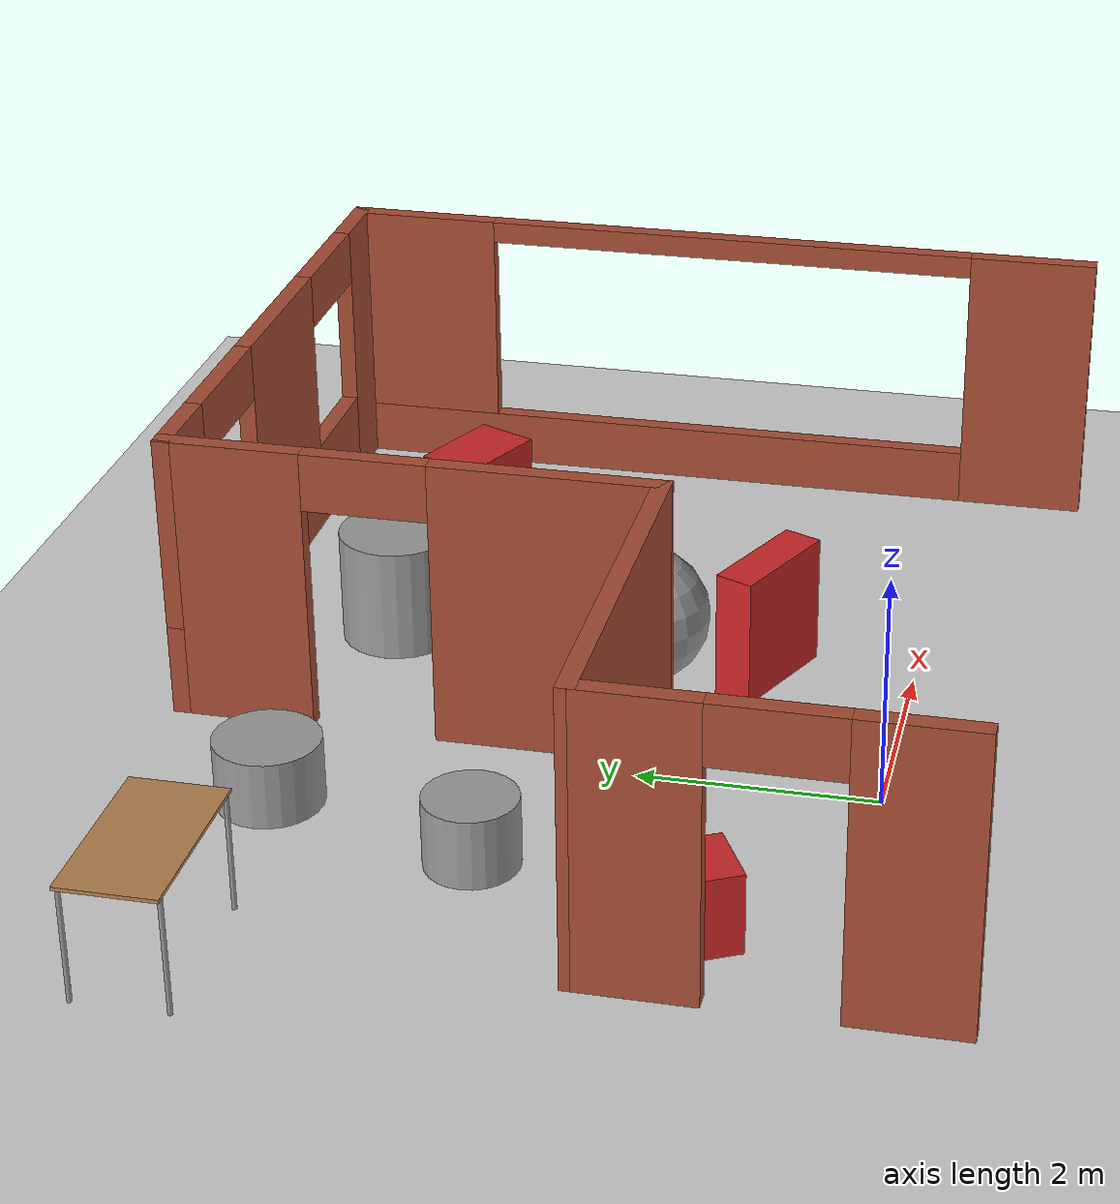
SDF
<sdf version="1.7">
 <world name="default">
  <model name="ground_plane">
   <static>1</static>
   <link name="link">
    <collision name="collision">
     <geometry><plane><normal>0 0 1</normal><size>100 100</size></plane></geometry>
     <surface>
      <contact><collide_bitmask>65535</collide_bitmask></contact>
      <friction><ode><mu>100</mu><mu2>50</mu2></ode></friction>
     </surface>
    </collision>
    <visual name="visual">
     <cast_shadows>0</cast_shadows>
     <geometry><plane><normal>0 0 1</normal><size>100 100</size></plane></geometry>
     <material>
      <script><uri>file://media/materials/scripts/gazebo.material</uri><name>Gazebo/Grey</name></script>
     </material>
    </visual>
   </link>
  </model>
  <model name="table">
   <static>1</static>
   <link name="link">
    <collision name="surface">
     <pose>0 0 1 0 -0 0</pose>
     <geometry><box><size>1.5 0.8 0.03</size></box></geometry>
     <surface><friction><ode><mu>0.6</mu><mu2>0.6</mu2></ode></friction></surface>
    </collision>
    <visual name="visual1">
     <pose>0 0 1 0 -0 0</pose>
     <geometry><box><size>1.5 0.8 0.03</size></box></geometry>
     <material>
      <script><uri>file://media/materials/scripts/gazebo.material</uri><name>Gazebo/Wood</name></script>
     </material>
    </visual>
    <collision name="front_left_leg">
     <pose>0.68 0.38 0.5 0 -0 0</pose>
     <geometry><cylinder><radius>0.02</radius><length>1</length></cylinder></geometry>
    </collision>
    <visual name="front_left_leg">
     <pose>0.68 0.38 0.5 0 -0 0</pose>
     <geometry><cylinder><radius>0.02</radius><length>1</length></cylinder></geometry>
     <material>
      <script><uri>file://media/materials/scripts/gazebo.material</uri><name>Gazebo/Grey</name></script>
     </material>
    </visual>
    <collision name="front_right_leg">
     <pose>0.68 -0.38 0.5 0 -0 0</pose>
     <geometry><cylinder><radius>0.02</radius><length>1</length></cylinder></geometry>
    </collision>
    <visual name="front_right_leg">
     <pose>0.68 -0.38 0.5 0 -0 0</pose>
     <geometry><cylinder><radius>0.02</radius><length>1</length></cylinder></geometry>
     <material>
      <script><uri>file://media/materials/scripts/gazebo.material</uri><name>Gazebo/Grey</name></script>
     </material>
    </visual>
    <collision name="back_right_leg">
     <pose>-0.68 -0.38 0.5 0 -0 0</pose>
     <geometry><cylinder><radius>0.02</radius><length>1</length></cylinder></geometry>
    </collision>
    <visual name="back_right_leg">
     <pose>-0.68 -0.38 0.5 0 -0 0</pose>
     <geometry><cylinder><radius>0.02</radius><length>1</length></cylinder></geometry>
     <material>
      <script><uri>file://media/materials/scripts/gazebo.material</uri><name>Gazebo/Grey</name></script>
     </material>
    </visual>
    <collision name="back_left_leg">
     <pose>-0.68 0.38 0.5 0 -0 0</pose>
     <geometry><cylinder><radius>0.02</radius><length>1</length></cylinder></geometry>
    </collision>
    <visual name="back_left_leg">
     <pose>-0.68 0.38 0.5 0 -0 0</pose>
     <geometry><cylinder><radius>0.02</radius><length>1</length></cylinder></geometry>
     <material>
      <script><uri>file://media/materials/scripts/gazebo.material</uri><name>Gazebo/Grey</name></script>
     </material>
    </visual>
   </link>
   <pose>-3.15936 4.91977 0 0 -0 0</pose>
  </model>
  <model name="unit_cylinder">
   <pose>-0.951249 4.77245 0.286507 0 0 -0.507211</pose>
   <link name="link">
    <inertial>
     <mass>1</mass>
     <inertia><ixx>0.145833</ixx><ixy>0</ixy><ixz>0</ixz><iyy>0.145833</iyy><iyz>0</iyz><izz>0.125</izz></inertia>
    </inertial>
    <collision name="collision">
     <geometry><cylinder><radius>0.443131</radius><length>0.573015</length></cylinder></geometry>
    </collision>
    <visual name="visual">
     <geometry><cylinder><radius>0.443131</radius><length>0.573015</length></cylinder></geometry>
     <material>
      <script><name>Gazebo/Grey</name><uri>file://media/materials/scripts/gazebo.material</uri></script>
     </material>
    </visual>
   </link>
  </model>
  <model name="unit_cylinder_0">
   <pose>-1.50045 2.96064 0.299235 0 0 -1.03302</pose>
   <link name="link">
    <inertial>
     <mass>1</mass>
     <inertia><ixx>0.145833</ixx><ixy>0</ixy><ixz>0</ixz><iyy>0.145833</iyy><iyz>0</iyz><izz>0.125</izz></inertia>
    </inertial>
    <collision name="collision">
     <geometry><cylinder><radius>0.386388</radius><length>0.59847</length></cylinder></geometry>
    </collision>
    <visual name="visual">
     <geometry><cylinder><radius>0.386388</radius><length>0.59847</length></cylinder></geometry>
     <material>
      <script><name>Gazebo/Grey</name><uri>file://media/materials/scripts/gazebo.material</uri></script>
     </material>
    </visual>
   </link>
  </model>
  <model name="unit_cylinder_1">
   <pose>1.96335 4.55514 0.5 0 -0 0</pose>
   <link name="link">
    <inertial>
     <mass>1</mass>
     <inertia><ixx>0.145833</ixx><ixy>0</ixy><ixz>0</ixz><iyy>0.145833</iyy><iyz>0</iyz><izz>0.125</izz></inertia>
    </inertial>
    <collision name="collision">
     <geometry><cylinder><radius>0.501667</radius><length>1</length></cylinder></geometry>
    </collision>
    <visual name="visual">
     <geometry><cylinder><radius>0.501667</radius><length>1</length></cylinder></geometry>
     <material>
      <script><name>Gazebo/Grey</name><uri>file://media/materials/scripts/gazebo.material</uri></script>
     </material>
    </visual>
   </link>
  </model>
  <model name="unit_sphere_0">
   <pose>1.6417 2.30704 0.591817 0 -0 0</pose>
   <link name="link">
    <inertial>
     <mass>1</mass>
     <inertia><ixx>0.1</ixx><ixy>0</ixy><ixz>0</ixz><iyy>0.1</iyy><iyz>0</iyz><izz>0.1</izz></inertia>
    </inertial>
    <collision name="collision"><geometry><sphere><radius>0.591817</radius></sphere></geometry></collision>
    <visual name="visual">
     <geometry><sphere><radius>0.591817</radius></sphere></geometry>
     <material>
      <script><name>Gazebo/Grey</name><uri>file://media/materials/scripts/gazebo.material</uri></script>
     </material>
    </visual>
   </link>
  </model>
  <model name="AssignmentBuilding_0">
   <link name="Wall_37">
    <pose>0.967555 4.32584 0 0 0 -1.5708</pose>
    <inertial>
     <mass>1</mass>
     <inertia><ixx>1</ixx><ixy>0</ixy><ixz>0</ixz><iyy>1</iyy><iyz>0</iyz><izz>1</izz></inertia>
    </inertial>
    <visual name="Wall_37_Visual_1">
     <pose>1.14152 0 1.25 0 -0 0</pose>
     <geometry><box><size>1.96696 0.15 2.5</size></box></geometry>
     <material>
      <script><uri>file://media/materials/scripts/gazebo.material</uri><name>Gazebo/Bricks</name></script>
      <ambient>1 1 1 1</ambient>
      <shader type="pixel"><normal_map>__default__</normal_map></shader>
      <diffuse>0.7 0.7 0.7 1</diffuse>
      <specular>0.01 0.01 0.01 1</specular>
      <emissive>0 0 0 1</emissive>
     </material>
     <meta><layer>0</layer></meta>
    </visual>
    <visual name="Wall_37_Visual_0">
     <pose>-1.50876 0 1.25 0 -0 0</pose>
     <geometry><box><size>1.23247 0.15 2.5</size></box></geometry>
     <material>
      <script><uri>file://media/materials/scripts/gazebo.material</uri><name>Gazebo/Bricks</name></script>
      <ambient>1 1 1 1</ambient>
      <shader type="pixel"><normal_map>__default__</normal_map></shader>
      <diffuse>0.7 0.7 0.7 1</diffuse>
      <specular>0.01 0.01 0.01 1</specular>
      <emissive>0 0 0 1</emissive>
     </material>
     <meta><layer>0</layer></meta>
    </visual>
    <visual name="Wall_37_Visual_2">
     <pose>-0.367245 0 2.25 0 -0 0</pose>
     <geometry><box><size>1.05057 0.15 0.5</size></box></geometry>
     <material>
      <script><uri>file://media/materials/scripts/gazebo.material</uri><name>Gazebo/Bricks</name></script>
      <ambient>1 1 1 1</ambient>
      <shader type="pixel"><normal_map>__default__</normal_map></shader>
      <diffuse>0.7 0.7 0.7 1</diffuse>
      <specular>0.01 0.01 0.01 1</specular>
      <emissive>0 0 0 1</emissive>
     </material>
     <meta><layer>0</layer></meta>
    </visual>
    <collision name="Wall_37_Collision_0">
     <pose>-1.50876 0 1.25 0 -0 0</pose>
     <geometry><box><size>1.23247 0.15 2.5</size></box></geometry>
     <surface>
      <friction>
       <ode><mu>1</mu><mu2>1</mu2><fdir1>0 0 0</fdir1><slip1>0</slip1><slip2>0</slip2></ode>
       <torsional>
        <coefficient>1</coefficient>
        <patch_radius>0</patch_radius>
        <surface_radius>0</surface_radius>
        <use_patch_radius>1</use_patch_radius>
        <ode><slip>0</slip></ode>
       </torsional>
      </friction>
      <bounce><restitution_coefficient>0</restitution_coefficient><threshold>1e+06</threshold></bounce>
      <contact>
       <collide_without_contact>0</collide_without_contact>
       <collide_without_contact_bitmask>1</collide_without_contact_bitmask>
       <collide_bitmask>1</collide_bitmask>
       <ode>
        <soft_cfm>0</soft_cfm>
        <soft_erp>0.2</soft_erp>
        <kp>1e+13</kp>
        <kd>1</kd>
        <max_vel>0.01</max_vel>
        <min_depth>0</min_depth>
       </ode>
       <bullet>
        <split_impulse>1</split_impulse>
        <split_impulse_penetration_threshold>-0.01</split_impulse_penetration_threshold>
        <soft_cfm>0</soft_cfm>
        <soft_erp>0.2</soft_erp>
        <kp>1e+13</kp>
        <kd>1</kd>
       </bullet>
      </contact>
     </surface>
    </collision>
    <collision name="Wall_37_Collision_1">
     <pose>1.14152 0 1.25 0 -0 0</pose>
     <geometry><box><size>1.96696 0.15 2.5</size></box></geometry>
     <surface>
      <friction>
       <ode><mu>1</mu><mu2>1</mu2><fdir1>0 0 0</fdir1><slip1>0</slip1><slip2>0</slip2></ode>
       <torsional>
        <coefficient>1</coefficient>
        <patch_radius>0</patch_radius>
        <surface_radius>0</surface_radius>
        <use_patch_radius>1</use_patch_radius>
        <ode><slip>0</slip></ode>
       </torsional>
      </friction>
      <bounce><restitution_coefficient>0</restitution_coefficient><threshold>1e+06</threshold></bounce>
      <contact>
       <collide_without_contact>0</collide_without_contact>
       <collide_without_contact_bitmask>1</collide_without_contact_bitmask>
       <collide_bitmask>1</collide_bitmask>
       <ode>
        <soft_cfm>0</soft_cfm>
        <soft_erp>0.2</soft_erp>
        <kp>1e+13</kp>
        <kd>1</kd>
        <max_vel>0.01</max_vel>
        <min_depth>0</min_depth>
       </ode>
       <bullet>
        <split_impulse>1</split_impulse>
        <split_impulse_penetration_threshold>-0.01</split_impulse_penetration_threshold>
        <soft_cfm>0</soft_cfm>
        <soft_erp>0.2</soft_erp>
        <kp>1e+13</kp>
        <kd>1</kd>
       </bullet>
      </contact>
     </surface>
    </collision>
    <collision name="Wall_37_Collision_2">
     <pose>-0.367245 0 2.25 0 -0 0</pose>
     <geometry><box><size>1.05057 0.15 0.5</size></box></geometry>
     <surface>
      <friction>
       <ode><mu>1</mu><mu2>1</mu2><fdir1>0 0 0</fdir1><slip1>0</slip1><slip2>0</slip2></ode>
       <torsional>
        <coefficient>1</coefficient>
        <patch_radius>0</patch_radius>
        <surface_radius>0</surface_radius>
        <use_patch_radius>1</use_patch_radius>
        <ode><slip>0</slip></ode>
       </torsional>
      </friction>
      <bounce><restitution_coefficient>0</restitution_coefficient><threshold>1e+06</threshold></bounce>
      <contact>
       <collide_without_contact>0</collide_without_contact>
       <collide_without_contact_bitmask>1</collide_without_contact_bitmask>
       <collide_bitmask>1</collide_bitmask>
       <ode>
        <soft_cfm>0</soft_cfm>
        <soft_erp>0.2</soft_erp>
        <kp>1e+13</kp>
        <kd>1</kd>
        <max_vel>0.01</max_vel>
        <min_depth>0</min_depth>
       </ode>
       <bullet>
        <split_impulse>1</split_impulse>
        <split_impulse_penetration_threshold>-0.01</split_impulse_penetration_threshold>
        <soft_cfm>0</soft_cfm>
        <soft_erp>0.2</soft_erp>
        <kp>1e+13</kp>
        <kd>1</kd>
       </bullet>
      </contact>
     </surface>
    </collision>
   </link>
   <link name="Wall_40">
    <pose>3.66768 6.37584 0 0 0 -3.14159</pose>
    <inertial>
     <mass>1</mass>
     <inertia><ixx>1</ixx><ixy>0</ixy><ixz>0</ixz><iyy>1</iyy><iyz>0</iyz><izz>1</izz></inertia>
    </inertial>
    <visual name="Wall_40_Visual_0">
     <pose>-2.41668 0 1.25 0 -0 0</pose>
     <geometry><box><size>0.71689 0.15 2.5</size></box></geometry>
     <material>
      <script><uri>file://media/materials/scripts/gazebo.material</uri><name>Gazebo/Bricks</name></script>
      <ambient>1 1 1 1</ambient>
      <shader type="pixel"><normal_map>__default__</normal_map></shader>
      <diffuse>1 1 1 1</diffuse>
      <specular>0.2 0.2 0.2 1</specular>
      <emissive>0 0 0 1</emissive>
     </material>
     <meta><layer>0</layer></meta>
    </visual>
    <visual name="Wall_40_Visual_1">
     <pose>0.358445 0 0.4 0 -0 0</pose>
     <geometry><box><size>4.83337 0.15 0.8</size></box></geometry>
     <material>
      <script><uri>file://media/materials/scripts/gazebo.material</uri><name>Gazebo/Bricks</name></script>
      <ambient>1 1 1 1</ambient>
      <shader type="pixel"><normal_map>__default__</normal_map></shader>
      <diffuse>0.7 0.7 0.7 1</diffuse>
      <specular>0.01 0.01 0.01 1</specular>
      <emissive>0 0 0 1</emissive>
     </material>
     <meta><layer>0</layer></meta>
    </visual>
    <visual name="Wall_40_Visual_2">
     <pose>-0.0658 0 1.65 0 -0 0</pose>
     <geometry><box><size>1.66352 0.15 1.7</size></box></geometry>
     <material>
      <script><uri>file://media/materials/scripts/gazebo.material</uri><name>Gazebo/Bricks</name></script>
      <ambient>1 1 1 1</ambient>
      <shader type="pixel"><normal_map>__default__</normal_map></shader>
      <diffuse>0.7 0.7 0.7 1</diffuse>
      <specular>0.01 0.01 0.01 1</specular>
      <emissive>0 0 0 1</emissive>
     </material>
     <meta><layer>0</layer></meta>
    </visual>
    <visual name="Wall_40_Visual_3">
     <pose>2.38491 0 1.65 0 -0 0</pose>
     <geometry><box><size>0.780436 0.15 1.7</size></box></geometry>
     <material>
      <script><uri>file://media/materials/scripts/gazebo.material</uri><name>Gazebo/Bricks</name></script>
      <ambient>1 1 1 1</ambient>
      <shader type="pixel"><normal_map>__default__</normal_map></shader>
      <diffuse>0.7 0.7 0.7 1</diffuse>
      <specular>0.01 0.01 0.01 1</specular>
      <emissive>0 0 0 1</emissive>
     </material>
     <meta><layer>0</layer></meta>
    </visual>
    <visual name="Wall_40_Visual_4">
     <pose>-1.4779 0 2.25 0 -0 0</pose>
     <geometry><box><size>1.16068 0.15 0.5</size></box></geometry>
     <material>
      <script><uri>file://media/materials/scripts/gazebo.material</uri><name>Gazebo/Bricks</name></script>
      <ambient>1 1 1 1</ambient>
      <shader type="pixel"><normal_map>__default__</normal_map></shader>
      <diffuse>0.7 0.7 0.7 1</diffuse>
      <specular>0.01 0.01 0.01 1</specular>
      <emissive>0 0 0 1</emissive>
     </material>
     <meta><layer>0</layer></meta>
    </visual>
    <visual name="Wall_40_Visual_5">
     <pose>1.38033 0 2.25 0 -0 0</pose>
     <geometry><box><size>1.22873 0.15 0.5</size></box></geometry>
     <material>
      <script><uri>file://media/materials/scripts/gazebo.material</uri><name>Gazebo/Bricks</name></script>
      <ambient>1 1 1 1</ambient>
      <shader type="pixel"><normal_map>__default__</normal_map></shader>
      <diffuse>0.7 0.7 0.7 1</diffuse>
      <specular>0.01 0.01 0.01 1</specular>
      <emissive>0 0 0 1</emissive>
     </material>
     <meta><layer>0</layer></meta>
    </visual>
    <collision name="Wall_40_Collision_0">
     <pose>-2.41668 0 1.25 0 -0 0</pose>
     <geometry><box><size>0.71689 0.15 2.5</size></box></geometry>
     <surface>
      <friction>
       <ode><mu>1</mu><mu2>1</mu2><fdir1>0 0 0</fdir1><slip1>0</slip1><slip2>0</slip2></ode>
       <torsional>
        <coefficient>1</coefficient>
        <patch_radius>0</patch_radius>
        <surface_radius>0</surface_radius>
        <use_patch_radius>1</use_patch_radius>
        <ode><slip>0</slip></ode>
       </torsional>
      </friction>
      <bounce><restitution_coefficient>0</restitution_coefficient><threshold>1e+06</threshold></bounce>
      <contact>
       <collide_without_contact>0</collide_without_contact>
       <collide_without_contact_bitmask>1</collide_without_contact_bitmask>
       <collide_bitmask>1</collide_bitmask>
       <ode>
        <soft_cfm>0</soft_cfm>
        <soft_erp>0.2</soft_erp>
        <kp>1e+13</kp>
        <kd>1</kd>
        <max_vel>0.01</max_vel>
        <min_depth>0</min_depth>
       </ode>
       <bullet>
        <split_impulse>1</split_impulse>
        <split_impulse_penetration_threshold>-0.01</split_impulse_penetration_threshold>
        <soft_cfm>0</soft_cfm>
        <soft_erp>0.2</soft_erp>
        <kp>1e+13</kp>
        <kd>1</kd>
       </bullet>
      </contact>
     </surface>
    </collision>
    <collision name="Wall_40_Collision_1">
     <pose>0.358445 0 0.4 0 -0 0</pose>
     <geometry><box><size>4.83337 0.15 0.8</size></box></geometry>
     <surface>
      <friction>
       <ode><mu>1</mu><mu2>1</mu2><fdir1>0 0 0</fdir1><slip1>0</slip1><slip2>0</slip2></ode>
       <torsional>
        <coefficient>1</coefficient>
        <patch_radius>0</patch_radius>
        <surface_radius>0</surface_radius>
        <use_patch_radius>1</use_patch_radius>
        <ode><slip>0</slip></ode>
       </torsional>
      </friction>
      <bounce><restitution_coefficient>0</restitution_coefficient><threshold>1e+06</threshold></bounce>
      <contact>
       <collide_without_contact>0</collide_without_contact>
       <collide_without_contact_bitmask>1</collide_without_contact_bitmask>
       <collide_bitmask>1</collide_bitmask>
       <ode>
        <soft_cfm>0</soft_cfm>
        <soft_erp>0.2</soft_erp>
        <kp>1e+13</kp>
        <kd>1</kd>
        <max_vel>0.01</max_vel>
        <min_depth>0</min_depth>
       </ode>
       <bullet>
        <split_impulse>1</split_impulse>
        <split_impulse_penetration_threshold>-0.01</split_impulse_penetration_threshold>
        <soft_cfm>0</soft_cfm>
        <soft_erp>0.2</soft_erp>
        <kp>1e+13</kp>
        <kd>1</kd>
       </bullet>
      </contact>
     </surface>
    </collision>
    <collision name="Wall_40_Collision_2">
     <pose>-0.0658 0 1.65 0 -0 0</pose>
     <geometry><box><size>1.66352 0.15 1.7</size></box></geometry>
     <surface>
      <friction>
       <ode><mu>1</mu><mu2>1</mu2><fdir1>0 0 0</fdir1><slip1>0</slip1><slip2>0</slip2></ode>
       <torsional>
        <coefficient>1</coefficient>
        <patch_radius>0</patch_radius>
        <surface_radius>0</surface_radius>
        <use_patch_radius>1</use_patch_radius>
        <ode><slip>0</slip></ode>
       </torsional>
      </friction>
      <bounce><restitution_coefficient>0</restitution_coefficient><threshold>1e+06</threshold></bounce>
      <contact>
       <collide_without_contact>0</collide_without_contact>
       <collide_without_contact_bitmask>1</collide_without_contact_bitmask>
       <collide_bitmask>1</collide_bitmask>
       <ode>
        <soft_cfm>0</soft_cfm>
        <soft_erp>0.2</soft_erp>
        <kp>1e+13</kp>
        <kd>1</kd>
        <max_vel>0.01</max_vel>
        <min_depth>0</min_depth>
       </ode>
       <bullet>
        <split_impulse>1</split_impulse>
        <split_impulse_penetration_threshold>-0.01</split_impulse_penetration_threshold>
        <soft_cfm>0</soft_cfm>
        <soft_erp>0.2</soft_erp>
        <kp>1e+13</kp>
        <kd>1</kd>
       </bullet>
      </contact>
     </surface>
    </collision>
    <collision name="Wall_40_Collision_3">
     <pose>2.38491 0 1.65 0 -0 0</pose>
     <geometry><box><size>0.780436 0.15 1.7</size></box></geometry>
     <surface>
      <friction>
       <ode><mu>1</mu><mu2>1</mu2><fdir1>0 0 0</fdir1><slip1>0</slip1><slip2>0</slip2></ode>
       <torsional>
        <coefficient>1</coefficient>
        <patch_radius>0</patch_radius>
        <surface_radius>0</surface_radius>
        <use_patch_radius>1</use_patch_radius>
        <ode><slip>0</slip></ode>
       </torsional>
      </friction>
      <bounce><restitution_coefficient>0</restitution_coefficient><threshold>1e+06</threshold></bounce>
      <contact>
       <collide_without_contact>0</collide_without_contact>
       <collide_without_contact_bitmask>1</collide_without_contact_bitmask>
       <collide_bitmask>1</collide_bitmask>
       <ode>
        <soft_cfm>0</soft_cfm>
        <soft_erp>0.2</soft_erp>
        <kp>1e+13</kp>
        <kd>1</kd>
        <max_vel>0.01</max_vel>
        <min_depth>0</min_depth>
       </ode>
       <bullet>
        <split_impulse>1</split_impulse>
        <split_impulse_penetration_threshold>-0.01</split_impulse_penetration_threshold>
        <soft_cfm>0</soft_cfm>
        <soft_erp>0.2</soft_erp>
        <kp>1e+13</kp>
        <kd>1</kd>
       </bullet>
      </contact>
     </surface>
    </collision>
    <collision name="Wall_40_Collision_4">
     <pose>-1.4779 0 2.25 0 -0 0</pose>
     <geometry><box><size>1.16068 0.15 0.5</size></box></geometry>
     <surface>
      <friction>
       <ode><mu>1</mu><mu2>1</mu2><fdir1>0 0 0</fdir1><slip1>0</slip1><slip2>0</slip2></ode>
       <torsional>
        <coefficient>1</coefficient>
        <patch_radius>0</patch_radius>
        <surface_radius>0</surface_radius>
        <use_patch_radius>1</use_patch_radius>
        <ode><slip>0</slip></ode>
       </torsional>
      </friction>
      <bounce><restitution_coefficient>0</restitution_coefficient><threshold>1e+06</threshold></bounce>
      <contact>
       <collide_without_contact>0</collide_without_contact>
       <collide_without_contact_bitmask>1</collide_without_contact_bitmask>
       <collide_bitmask>1</collide_bitmask>
       <ode>
        <soft_cfm>0</soft_cfm>
        <soft_erp>0.2</soft_erp>
        <kp>1e+13</kp>
        <kd>1</kd>
        <max_vel>0.01</max_vel>
        <min_depth>0</min_depth>
       </ode>
       <bullet>
        <split_impulse>1</split_impulse>
        <split_impulse_penetration_threshold>-0.01</split_impulse_penetration_threshold>
        <soft_cfm>0</soft_cfm>
        <soft_erp>0.2</soft_erp>
        <kp>1e+13</kp>
        <kd>1</kd>
       </bullet>
      </contact>
     </surface>
    </collision>
    <collision name="Wall_40_Collision_5">
     <pose>1.38033 0 2.25 0 -0 0</pose>
     <geometry><box><size>1.22873 0.15 0.5</size></box></geometry>
     <surface>
      <friction>
       <ode><mu>1</mu><mu2>1</mu2><fdir1>0 0 0</fdir1><slip1>0</slip1><slip2>0</slip2></ode>
       <torsional>
        <coefficient>1</coefficient>
        <patch_radius>0</patch_radius>
        <surface_radius>0</surface_radius>
        <use_patch_radius>1</use_patch_radius>
        <ode><slip>0</slip></ode>
       </torsional>
      </friction>
      <bounce><restitution_coefficient>0</restitution_coefficient><threshold>1e+06</threshold></bounce>
      <contact>
       <collide_without_contact>0</collide_without_contact>
       <collide_without_contact_bitmask>1</collide_without_contact_bitmask>
       <collide_bitmask>1</collide_bitmask>
       <ode>
        <soft_cfm>0</soft_cfm>
        <soft_erp>0.2</soft_erp>
        <kp>1e+13</kp>
        <kd>1</kd>
        <max_vel>0.01</max_vel>
        <min_depth>0</min_depth>
       </ode>
       <bullet>
        <split_impulse>1</split_impulse>
        <split_impulse_penetration_threshold>-0.01</split_impulse_penetration_threshold>
        <soft_cfm>0</soft_cfm>
        <soft_erp>0.2</soft_erp>
        <kp>1e+13</kp>
        <kd>1</kd>
       </bullet>
      </contact>
     </surface>
    </collision>
   </link>
   <link name="Wall_42">
    <pose>-0.631247 2.27475 0 0 -0 0.000678</pose>
    <inertial>
     <mass>1</mass>
     <inertia><ixx>1</ixx><ixy>0</ixy><ixz>0</ixz><iyy>1</iyy><iyz>0</iyz><izz>1</izz></inertia>
    </inertial>
    <visual name="Wall_42_Visual">
     <pose>0 0 1.25 0 -0 0</pose>
     <geometry><box><size>3.34761 0.15 2.5</size></box></geometry>
     <material>
      <script><uri>file://media/materials/scripts/gazebo.material</uri><name>Gazebo/Bricks</name></script>
      <ambient>1 1 1 1</ambient>
      <shader type="pixel"><normal_map>__default__</normal_map></shader>
      <diffuse>1 1 1 1</diffuse>
      <specular>0.2 0.2 0.2 1</specular>
      <emissive>0 0 0 1</emissive>
     </material>
     <meta><layer>0</layer></meta>
    </visual>
    <collision name="Wall_42_Collision">
     <pose>0 0 1.25 0 -0 0</pose>
     <geometry><box><size>3.34761 0.15 2.5</size></box></geometry>
     <surface>
      <friction>
       <ode><mu>1</mu><mu2>1</mu2><fdir1>0 0 0</fdir1><slip1>0</slip1><slip2>0</slip2></ode>
       <torsional>
        <coefficient>1</coefficient>
        <patch_radius>0</patch_radius>
        <surface_radius>0</surface_radius>
        <use_patch_radius>1</use_patch_radius>
        <ode><slip>0</slip></ode>
       </torsional>
      </friction>
      <bounce><restitution_coefficient>0</restitution_coefficient><threshold>1e+06</threshold></bounce>
      <contact>
       <collide_without_contact>0</collide_without_contact>
       <collide_without_contact_bitmask>1</collide_without_contact_bitmask>
       <collide_bitmask>1</collide_bitmask>
       <ode>
        <soft_cfm>0</soft_cfm>
        <soft_erp>0.2</soft_erp>
        <kp>1e+13</kp>
        <kd>1</kd>
        <max_vel>0.01</max_vel>
        <min_depth>0</min_depth>
       </ode>
       <bullet>
        <split_impulse>1</split_impulse>
        <split_impulse_penetration_threshold>-0.01</split_impulse_penetration_threshold>
        <soft_cfm>0</soft_cfm>
        <soft_erp>0.2</soft_erp>
        <kp>1e+13</kp>
        <kd>1</kd>
       </bullet>
      </contact>
     </surface>
    </collision>
   </link>
   <link name="Wall_46">
    <pose>6.37502 2.87945 0 0 -0 1.57286</pose>
    <inertial>
     <mass>1</mass>
     <inertia><ixx>1</ixx><ixy>0</ixy><ixz>0</ixz><iyy>1</iyy><iyz>0</iyz><izz>1</izz></inertia>
    </inertial>
    <visual name="Wall_46_Visual_0">
     <pose>-2.99489 0 1.25 0 -0 0</pose>
     <geometry><box><size>1.15301 0.15 2.5</size></box></geometry>
     <material>
      <script><uri>file://media/materials/scripts/gazebo.material</uri><name>Gazebo/Bricks</name></script>
      <ambient>1 1 1 1</ambient>
      <shader type="pixel"><normal_map>__default__</normal_map></shader>
      <diffuse>1 1 1 1</diffuse>
      <specular>0.2 0.2 0.2 1</specular>
      <emissive>0 0 0 1</emissive>
     </material>
     <meta><layer>0</layer></meta>
    </visual>
    <visual name="Wall_46_Visual_1">
     <pose>0.576503 0 0.2495 0 -0 0</pose>
     <geometry><box><size>5.98978 0.15 0.499</size></box></geometry>
     <material>
      <script><uri>file://media/materials/scripts/gazebo.material</uri><name>Gazebo/Bricks</name></script>
      <ambient>1 1 1 1</ambient>
      <shader type="pixel"><normal_map>__default__</normal_map></shader>
      <diffuse>0.7 0.7 0.7 1</diffuse>
      <specular>0.01 0.01 0.01 1</specular>
      <emissive>0 0 0 1</emissive>
     </material>
     <meta><layer>0</layer></meta>
    </visual>
    <visual name="Wall_46_Visual_2">
     <pose>2.865 0 1.4995 0 -0 0</pose>
     <geometry><box><size>1.41278 0.15 2.001</size></box></geometry>
     <material>
      <script><uri>file://media/materials/scripts/gazebo.material</uri><name>Gazebo/Bricks</name></script>
      <ambient>1 1 1 1</ambient>
      <shader type="pixel"><normal_map>__default__</normal_map></shader>
      <diffuse>0.7 0.7 0.7 1</diffuse>
      <specular>0.01 0.01 0.01 1</specular>
      <emissive>0 0 0 1</emissive>
     </material>
     <meta><layer>0</layer></meta>
    </visual>
    <visual name="Wall_46_Visual_3">
     <pose>-0.129889 0 2.3995 0 -0 0</pose>
     <geometry><box><size>4.577 0.15 0.201</size></box></geometry>
     <material>
      <script><uri>file://media/materials/scripts/gazebo.material</uri><name>Gazebo/Bricks</name></script>
      <ambient>1 1 1 1</ambient>
      <shader type="pixel"><normal_map>__default__</normal_map></shader>
      <diffuse>0.7 0.7 0.7 1</diffuse>
      <specular>0.01 0.01 0.01 1</specular>
      <emissive>0 0 0 1</emissive>
     </material>
     <meta><layer>0</layer></meta>
    </visual>
    <collision name="Wall_46_Collision_0">
     <pose>-2.99489 0 1.25 0 -0 0</pose>
     <geometry><box><size>1.15301 0.15 2.5</size></box></geometry>
     <surface>
      <friction>
       <ode><mu>1</mu><mu2>1</mu2><fdir1>0 0 0</fdir1><slip1>0</slip1><slip2>0</slip2></ode>
       <torsional>
        <coefficient>1</coefficient>
        <patch_radius>0</patch_radius>
        <surface_radius>0</surface_radius>
        <use_patch_radius>1</use_patch_radius>
        <ode><slip>0</slip></ode>
       </torsional>
      </friction>
      <bounce><restitution_coefficient>0</restitution_coefficient><threshold>1e+06</threshold></bounce>
      <contact>
       <collide_without_contact>0</collide_without_contact>
       <collide_without_contact_bitmask>1</collide_without_contact_bitmask>
       <collide_bitmask>1</collide_bitmask>
       <ode>
        <soft_cfm>0</soft_cfm>
        <soft_erp>0.2</soft_erp>
        <kp>1e+13</kp>
        <kd>1</kd>
        <max_vel>0.01</max_vel>
        <min_depth>0</min_depth>
       </ode>
       <bullet>
        <split_impulse>1</split_impulse>
        <split_impulse_penetration_threshold>-0.01</split_impulse_penetration_threshold>
        <soft_cfm>0</soft_cfm>
        <soft_erp>0.2</soft_erp>
        <kp>1e+13</kp>
        <kd>1</kd>
       </bullet>
      </contact>
     </surface>
    </collision>
    <collision name="Wall_46_Collision_1">
     <pose>0.576503 0 0.2495 0 -0 0</pose>
     <geometry><box><size>5.98978 0.15 0.499</size></box></geometry>
     <surface>
      <friction>
       <ode><mu>1</mu><mu2>1</mu2><fdir1>0 0 0</fdir1><slip1>0</slip1><slip2>0</slip2></ode>
       <torsional>
        <coefficient>1</coefficient>
        <patch_radius>0</patch_radius>
        <surface_radius>0</surface_radius>
        <use_patch_radius>1</use_patch_radius>
        <ode><slip>0</slip></ode>
       </torsional>
      </friction>
      <bounce><restitution_coefficient>0</restitution_coefficient><threshold>1e+06</threshold></bounce>
      <contact>
       <collide_without_contact>0</collide_without_contact>
       <collide_without_contact_bitmask>1</collide_without_contact_bitmask>
       <collide_bitmask>1</collide_bitmask>
       <ode>
        <soft_cfm>0</soft_cfm>
        <soft_erp>0.2</soft_erp>
        <kp>1e+13</kp>
        <kd>1</kd>
        <max_vel>0.01</max_vel>
        <min_depth>0</min_depth>
       </ode>
       <bullet>
        <split_impulse>1</split_impulse>
        <split_impulse_penetration_threshold>-0.01</split_impulse_penetration_threshold>
        <soft_cfm>0</soft_cfm>
        <soft_erp>0.2</soft_erp>
        <kp>1e+13</kp>
        <kd>1</kd>
       </bullet>
      </contact>
     </surface>
    </collision>
    <collision name="Wall_46_Collision_2">
     <pose>2.865 0 1.4995 0 -0 0</pose>
     <geometry><box><size>1.41278 0.15 2.001</size></box></geometry>
     <surface>
      <friction>
       <ode><mu>1</mu><mu2>1</mu2><fdir1>0 0 0</fdir1><slip1>0</slip1><slip2>0</slip2></ode>
       <torsional>
        <coefficient>1</coefficient>
        <patch_radius>0</patch_radius>
        <surface_radius>0</surface_radius>
        <use_patch_radius>1</use_patch_radius>
        <ode><slip>0</slip></ode>
       </torsional>
      </friction>
      <bounce><restitution_coefficient>0</restitution_coefficient><threshold>1e+06</threshold></bounce>
      <contact>
       <collide_without_contact>0</collide_without_contact>
       <collide_without_contact_bitmask>1</collide_without_contact_bitmask>
       <collide_bitmask>1</collide_bitmask>
       <ode>
        <soft_cfm>0</soft_cfm>
        <soft_erp>0.2</soft_erp>
        <kp>1e+13</kp>
        <kd>1</kd>
        <max_vel>0.01</max_vel>
        <min_depth>0</min_depth>
       </ode>
       <bullet>
        <split_impulse>1</split_impulse>
        <split_impulse_penetration_threshold>-0.01</split_impulse_penetration_threshold>
        <soft_cfm>0</soft_cfm>
        <soft_erp>0.2</soft_erp>
        <kp>1e+13</kp>
        <kd>1</kd>
       </bullet>
      </contact>
     </surface>
    </collision>
    <collision name="Wall_46_Collision_3">
     <pose>-0.129889 0 2.3995 0 -0 0</pose>
     <geometry><box><size>4.577 0.15 0.201</size></box></geometry>
     <surface>
      <friction>
       <ode><mu>1</mu><mu2>1</mu2><fdir1>0 0 0</fdir1><slip1>0</slip1><slip2>0</slip2></ode>
       <torsional>
        <coefficient>1</coefficient>
        <patch_radius>0</patch_radius>
        <surface_radius>0</surface_radius>
        <use_patch_radius>1</use_patch_radius>
        <ode><slip>0</slip></ode>
       </torsional>
      </friction>
      <bounce><restitution_coefficient>0</restitution_coefficient><threshold>1e+06</threshold></bounce>
      <contact>
       <collide_without_contact>0</collide_without_contact>
       <collide_without_contact_bitmask>1</collide_without_contact_bitmask>
       <collide_bitmask>1</collide_bitmask>
       <ode>
        <soft_cfm>0</soft_cfm>
        <soft_erp>0.2</soft_erp>
        <kp>1e+13</kp>
        <kd>1</kd>
        <max_vel>0.01</max_vel>
        <min_depth>0</min_depth>
       </ode>
       <bullet>
        <split_impulse>1</split_impulse>
        <split_impulse_penetration_threshold>-0.01</split_impulse_penetration_threshold>
        <soft_cfm>0</soft_cfm>
        <soft_erp>0.2</soft_erp>
        <kp>1e+13</kp>
        <kd>1</kd>
       </bullet>
      </contact>
     </surface>
    </collision>
   </link>
   <link name="Wall_60">
    <pose>-2.23005 0.848671 0 0 0 -1.5708</pose>
    <inertial>
     <mass>1</mass>
     <inertia><ixx>1</ixx><ixy>0</ixy><ixz>0</ixz><iyy>1</iyy><iyz>0</iyz><izz>1</izz></inertia>
    </inertial>
    <visual name="Wall_60_Visual_0">
     <pose>-0.983723 0 1.25 0 -0 0</pose>
     <geometry><box><size>1.03255 0.15 2.5</size></box></geometry>
     <material>
      <script><uri>file://media/materials/scripts/gazebo.material</uri><name>Gazebo/Bricks</name></script>
      <ambient>1 1 1 1</ambient>
      <shader type="pixel"><normal_map>__default__</normal_map></shader>
      <diffuse>1 1 1 1</diffuse>
      <specular>0.2 0.2 0.2 1</specular>
      <emissive>0 0 0 1</emissive>
     </material>
     <meta><layer>0</layer></meta>
    </visual>
    <visual name="Wall_60_Visual_1">
     <pose>1.02103 0 1.25 0 -0 0</pose>
     <geometry><box><size>0.957943 0.15 2.5</size></box></geometry>
     <material>
      <script><uri>file://media/materials/scripts/gazebo.material</uri><name>Gazebo/Bricks</name></script>
      <ambient>1 1 1 1</ambient>
      <shader type="pixel"><normal_map>__default__</normal_map></shader>
      <diffuse>0.7 0.7 0.7 1</diffuse>
      <specular>0.01 0.01 0.01 1</specular>
      <emissive>0 0 0 1</emissive>
     </material>
     <meta><layer>0</layer></meta>
    </visual>
    <visual name="Wall_60_Visual_2">
     <pose>0.037305 0 2.25 0 -0 0</pose>
     <geometry><box><size>1.0095 0.15 0.5</size></box></geometry>
     <material>
      <script><uri>file://media/materials/scripts/gazebo.material</uri><name>Gazebo/Bricks</name></script>
      <ambient>1 1 1 1</ambient>
      <shader type="pixel"><normal_map>__default__</normal_map></shader>
      <diffuse>0.7 0.7 0.7 1</diffuse>
      <specular>0.01 0.01 0.01 1</specular>
      <emissive>0 0 0 1</emissive>
     </material>
     <meta><layer>0</layer></meta>
    </visual>
    <collision name="Wall_60_Collision_0">
     <pose>-0.983723 0 1.25 0 -0 0</pose>
     <geometry><box><size>1.03255 0.15 2.5</size></box></geometry>
     <surface>
      <friction>
       <ode><mu>1</mu><mu2>1</mu2><fdir1>0 0 0</fdir1><slip1>0</slip1><slip2>0</slip2></ode>
       <torsional>
        <coefficient>1</coefficient>
        <patch_radius>0</patch_radius>
        <surface_radius>0</surface_radius>
        <use_patch_radius>1</use_patch_radius>
        <ode><slip>0</slip></ode>
       </torsional>
      </friction>
      <bounce><restitution_coefficient>0</restitution_coefficient><threshold>1e+06</threshold></bounce>
      <contact>
       <collide_without_contact>0</collide_without_contact>
       <collide_without_contact_bitmask>1</collide_without_contact_bitmask>
       <collide_bitmask>1</collide_bitmask>
       <ode>
        <soft_cfm>0</soft_cfm>
        <soft_erp>0.2</soft_erp>
        <kp>1e+13</kp>
        <kd>1</kd>
        <max_vel>0.01</max_vel>
        <min_depth>0</min_depth>
       </ode>
       <bullet>
        <split_impulse>1</split_impulse>
        <split_impulse_penetration_threshold>-0.01</split_impulse_penetration_threshold>
        <soft_cfm>0</soft_cfm>
        <soft_erp>0.2</soft_erp>
        <kp>1e+13</kp>
        <kd>1</kd>
       </bullet>
      </contact>
     </surface>
    </collision>
    <collision name="Wall_60_Collision_1">
     <pose>1.02103 0 1.25 0 -0 0</pose>
     <geometry><box><size>0.957943 0.15 2.5</size></box></geometry>
     <surface>
      <friction>
       <ode><mu>1</mu><mu2>1</mu2><fdir1>0 0 0</fdir1><slip1>0</slip1><slip2>0</slip2></ode>
       <torsional>
        <coefficient>1</coefficient>
        <patch_radius>0</patch_radius>
        <surface_radius>0</surface_radius>
        <use_patch_radius>1</use_patch_radius>
        <ode><slip>0</slip></ode>
       </torsional>
      </friction>
      <bounce><restitution_coefficient>0</restitution_coefficient><threshold>1e+06</threshold></bounce>
      <contact>
       <collide_without_contact>0</collide_without_contact>
       <collide_without_contact_bitmask>1</collide_without_contact_bitmask>
       <collide_bitmask>1</collide_bitmask>
       <ode>
        <soft_cfm>0</soft_cfm>
        <soft_erp>0.2</soft_erp>
        <kp>1e+13</kp>
        <kd>1</kd>
        <max_vel>0.01</max_vel>
        <min_depth>0</min_depth>
       </ode>
       <bullet>
        <split_impulse>1</split_impulse>
        <split_impulse_penetration_threshold>-0.01</split_impulse_penetration_threshold>
        <soft_cfm>0</soft_cfm>
        <soft_erp>0.2</soft_erp>
        <kp>1e+13</kp>
        <kd>1</kd>
       </bullet>
      </contact>
     </surface>
    </collision>
    <collision name="Wall_60_Collision_2">
     <pose>0.037305 0 2.25 0 -0 0</pose>
     <geometry><box><size>1.0095 0.15 0.5</size></box></geometry>
     <surface>
      <friction>
       <ode><mu>1</mu><mu2>1</mu2><fdir1>0 0 0</fdir1><slip1>0</slip1><slip2>0</slip2></ode>
       <torsional>
        <coefficient>1</coefficient>
        <patch_radius>0</patch_radius>
        <surface_radius>0</surface_radius>
        <use_patch_radius>1</use_patch_radius>
        <ode><slip>0</slip></ode>
       </torsional>
      </friction>
      <bounce><restitution_coefficient>0</restitution_coefficient><threshold>1e+06</threshold></bounce>
      <contact>
       <collide_without_contact>0</collide_without_contact>
       <collide_without_contact_bitmask>1</collide_without_contact_bitmask>
       <collide_bitmask>1</collide_bitmask>
       <ode>
        <soft_cfm>0</soft_cfm>
        <soft_erp>0.2</soft_erp>
        <kp>1e+13</kp>
        <kd>1</kd>
        <max_vel>0.01</max_vel>
        <min_depth>0</min_depth>
       </ode>
       <bullet>
        <split_impulse>1</split_impulse>
        <split_impulse_penetration_threshold>-0.01</split_impulse_penetration_threshold>
        <soft_cfm>0</soft_cfm>
        <soft_erp>0.2</soft_erp>
        <kp>1e+13</kp>
        <kd>1</kd>
       </bullet>
      </contact>
     </surface>
    </collision>
   </link>
   <static>1</static>
   <pose>-0.68157 -0.42903 0 0 -0 0</pose>
  </model>
  <model name="unit_box_3_clone">
   <link name="link">
    <inertial>
     <mass>1</mass>
     <inertia>
      <ixx>0.166667</ixx>
      <ixy>0</ixy>
      <ixz>0</ixz>
      <iyy>0.166667</iyy>
      <iyz>0</iyz>
      <izz>0.166667</izz>
     </inertia>
    </inertial>
    <visual name="visual">
     <geometry><box><size>0.898962 0.587718 0.68729</size></box></geometry>
     <material>
      <script><name>Gazebo/Red</name><uri>file://media/materials/scripts/gazebo.material</uri></script>
      <shader type="pixel"><normal_map>__default__</normal_map></shader>
      <ambient>1 0 0 1</ambient>
      <diffuse>1 0 0 1</diffuse>
      <specular>0.1 0.1 0.1 1</specular>
      <emissive>0 0 0 1</emissive>
     </material>
    </visual>
    <collision name="collision">
     <geometry><box><size>0.898962 0.587718 0.68729</size></box></geometry>
     <surface>
      <friction>
       <ode><mu>1</mu><mu2>1</mu2><fdir1>0 0 0</fdir1><slip1>0</slip1><slip2>0</slip2></ode>
       <torsional>
        <coefficient>1</coefficient>
        <patch_radius>0</patch_radius>
        <surface_radius>0</surface_radius>
        <use_patch_radius>1</use_patch_radius>
        <ode><slip>0</slip></ode>
       </torsional>
      </friction>
      <bounce><restitution_coefficient>0</restitution_coefficient><threshold>1e+06</threshold></bounce>
      <contact>
       <collide_without_contact>0</collide_without_contact>
       <collide_without_contact_bitmask>1</collide_without_contact_bitmask>
       <collide_bitmask>1</collide_bitmask>
       <ode>
        <soft_cfm>0</soft_cfm>
        <soft_erp>0.2</soft_erp>
        <kp>1e+13</kp>
        <kd>1</kd>
        <max_vel>0.01</max_vel>
        <min_depth>0</min_depth>
       </ode>
       <bullet>
        <split_impulse>1</split_impulse>
        <split_impulse_penetration_threshold>-0.01</split_impulse_penetration_threshold>
        <soft_cfm>0</soft_cfm>
        <soft_erp>0.2</soft_erp>
        <kp>1e+13</kp>
        <kd>1</kd>
       </bullet>
      </contact>
     </surface>
    </collision>
   </link>
   <static>0</static>
   <pose>4.40236 4.48783 0.343645 0 0 -0.420452</pose>
  </model>
  <model name="unit_box_3_clone_1">
   <link name="link">
    <inertial>
     <mass>1</mass>
     <inertia>
      <ixx>0.166667</ixx>
      <ixy>0</ixy>
      <ixz>0</ixz>
      <iyy>0.166667</iyy>
      <iyz>0</iyz>
      <izz>0.166667</izz>
     </inertia>
    </inertial>
    <visual name="visual">
     <geometry><box><size>1.04886 0.344574 1.13518</size></box></geometry>
     <material>
      <script><name>Gazebo/Red</name><uri>file://media/materials/scripts/gazebo.material</uri></script>
      <shader type="pixel"><normal_map>__default__</normal_map></shader>
      <ambient>1 0 0 1</ambient>
      <diffuse>1 0 0 1</diffuse>
      <specular>0.1 0.1 0.1 1</specular>
      <emissive>0 0 0 1</emissive>
     </material>
    </visual>
    <collision name="collision">
     <geometry><box><size>1.04886 0.344574 1.13518</size></box></geometry>
     <surface>
      <friction>
       <ode><mu>1</mu><mu2>1</mu2><fdir1>0 0 0</fdir1><slip1>0</slip1><slip2>0</slip2></ode>
       <torsional>
        <coefficient>1</coefficient>
        <patch_radius>0</patch_radius>
        <surface_radius>0</surface_radius>
        <use_patch_radius>1</use_patch_radius>
        <ode><slip>0</slip></ode>
       </torsional>
      </friction>
      <bounce><restitution_coefficient>0</restitution_coefficient><threshold>1e+06</threshold></bounce>
      <contact>
       <collide_without_contact>0</collide_without_contact>
       <collide_without_contact_bitmask>1</collide_without_contact_bitmask>
       <collide_bitmask>1</collide_bitmask>
       <ode>
        <soft_cfm>0</soft_cfm>
        <soft_erp>0.2</soft_erp>
        <kp>1e+13</kp>
        <kd>1</kd>
        <max_vel>0.01</max_vel>
        <min_depth>0</min_depth>
       </ode>
       <bullet>
        <split_impulse>1</split_impulse>
        <split_impulse_penetration_threshold>-0.01</split_impulse_penetration_threshold>
        <soft_cfm>0</soft_cfm>
        <soft_erp>0.2</soft_erp>
        <kp>1e+13</kp>
        <kd>1</kd>
       </bullet>
      </contact>
     </surface>
    </collision>
   </link>
   <static>0</static>
   <pose>1.86172 1.25321 0.567586 1e-06 -8e-06 -0.42039</pose>
  </model>
  <model name="unit_box_3_clone_3">
   <link name="link">
    <inertial>
     <mass>1</mass>
     <inertia>
      <ixx>0.166667</ixx>
      <ixy>0</ixy>
      <ixz>0</ixz>
      <iyy>0.166667</iyy>
      <iyz>0</iyz>
      <izz>0.166667</izz>
     </inertia>
    </inertial>
    <visual name="visual">
     <geometry><box><size>0.597837 0.587718 0.68729</size></box></geometry>
     <material>
      <script><name>Gazebo/Red</name><uri>file://media/materials/scripts/gazebo.material</uri></script>
      <shader type="pixel"><normal_map>__default__</normal_map></shader>
      <ambient>1 0 0 1</ambient>
      <diffuse>1 0 0 1</diffuse>
      <specular>0.1 0.1 0.1 1</specular>
      <emissive>0 0 0 1</emissive>
     </material>
    </visual>
    <collision name="collision">
     <geometry><box><size>0.597837 0.587718 0.68729</size></box></geometry>
     <surface>
      <friction>
       <ode><mu>1</mu><mu2>1</mu2><fdir1>0 0 0</fdir1><slip1>0</slip1><slip2>0</slip2></ode>
       <torsional>
        <coefficient>1</coefficient>
        <patch_radius>0</patch_radius>
        <surface_radius>0</surface_radius>
        <use_patch_radius>1</use_patch_radius>
        <ode><slip>0</slip></ode>
       </torsional>
      </friction>
      <bounce><restitution_coefficient>0</restitution_coefficient><threshold>1e+06</threshold></bounce>
      <contact>
       <collide_without_contact>0</collide_without_contact>
       <collide_without_contact_bitmask>1</collide_without_contact_bitmask>
       <collide_bitmask>1</collide_bitmask>
       <ode>
        <soft_cfm>0</soft_cfm>
        <soft_erp>0.2</soft_erp>
        <kp>1e+13</kp>
        <kd>1</kd>
        <max_vel>0.01</max_vel>
        <min_depth>0</min_depth>
       </ode>
       <bullet>
        <split_impulse>1</split_impulse>
        <split_impulse_penetration_threshold>-0.01</split_impulse_penetration_threshold>
        <soft_cfm>0</soft_cfm>
        <soft_erp>0.2</soft_erp>
        <kp>1e+13</kp>
        <kd>1</kd>
       </bullet>
      </contact>
     </surface>
    </collision>
   </link>
   <static>0</static>
   <pose>-2.14028 1.09401 0.343645 0 0 -1.0874</pose>
  </model>
 </world>
</sdf>
